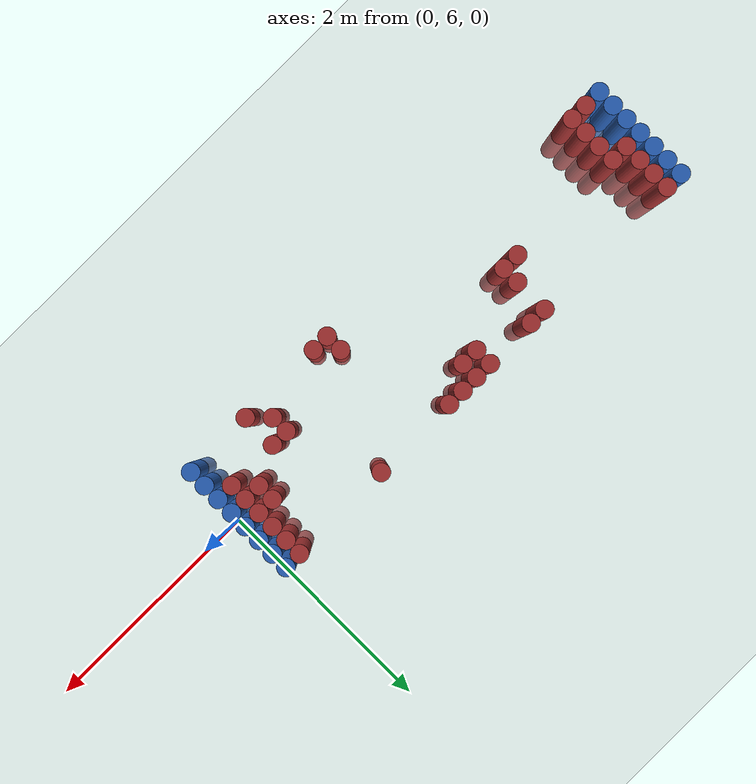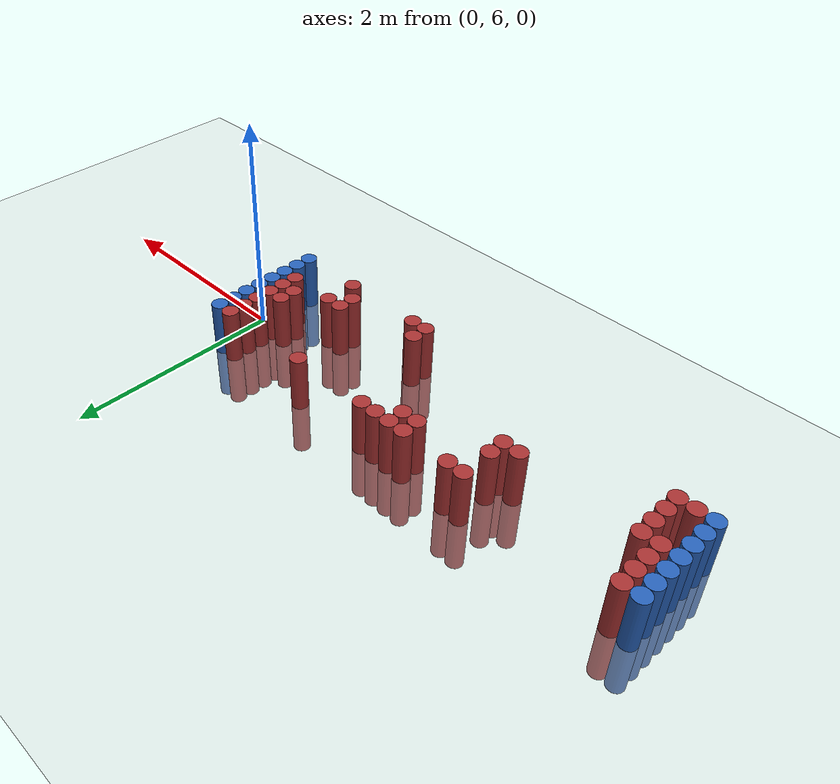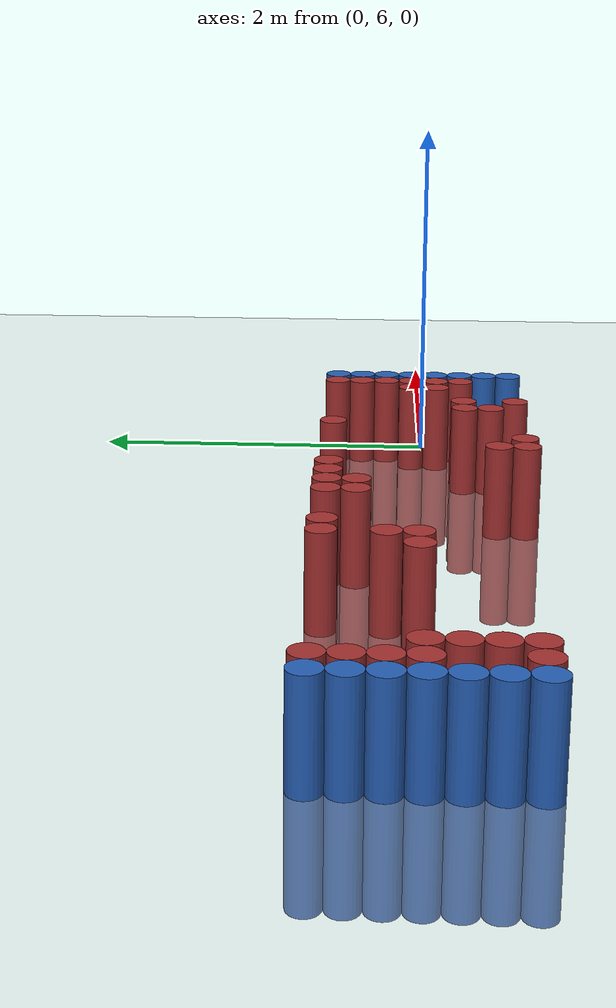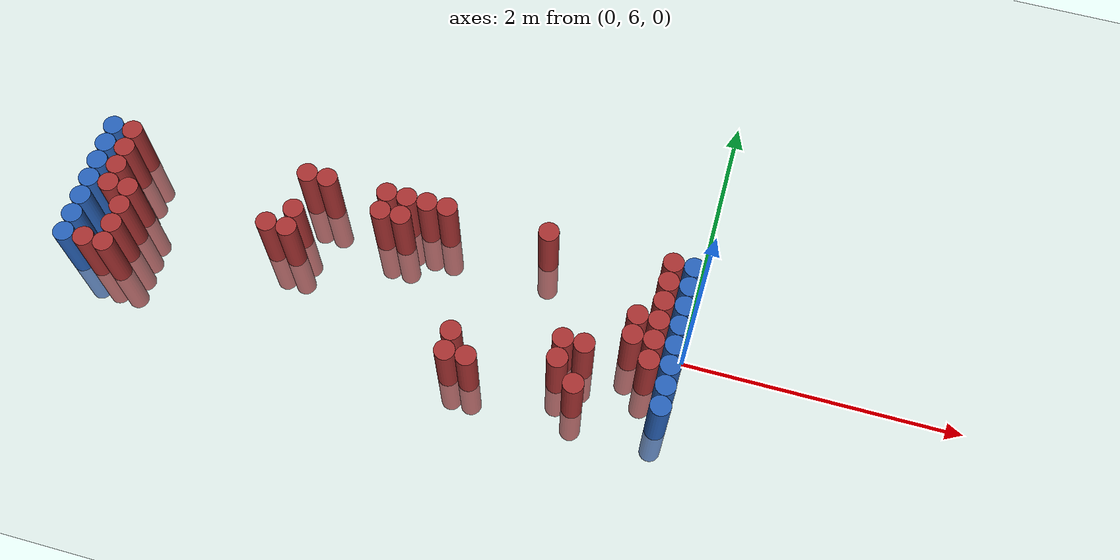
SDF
<sdf version="1.6">
 <world name="default">
  <model name="ground_plane">
   <static>1</static>
   <link name="link">
    <collision name="collision">
     <geometry><plane><normal>0 0 1</normal><size>100 100</size></plane></geometry>
     <surface><friction><ode><mu>100</mu><mu2>50</mu2></ode></friction></surface>
    </collision>
    <visual name="visual">
     <cast_shadows>0</cast_shadows>
     <geometry><plane><normal>0 0 1</normal><size>100 100</size></plane></geometry>
     <material>
      <script><uri>file://media/materials/scripts/gazebo.material</uri><name>Gazebo/Grey</name></script>
     </material>
    </visual>
   </link>
  </model>
  <model name="unit_cylinder_99">
   <static>1</static>
   <pose>-4.425000 5.625000 0.000000 0.000000 0.000000 0.000000</pose>
   <link name="link">
    <inertial>
     <mass>1</mass>
     <inertia><ixx>0.145833</ixx><ixy>0</ixy><ixz>0</ixz><iyy>0.145833</iyy><iyz>0</iyz><izz>0.125</izz></inertia>
    </inertial>
    <collision name="collision">
     <geometry><cylinder><radius>0.075000</radius><length>1</length></cylinder></geometry>
    </collision>
    <visual name="visual">
     <geometry><cylinder><radius>0.075000</radius><length>1</length></cylinder></geometry>
     <material>
      <ambient>0.152000 0.379000 0.720000 1</ambient>
      <diffuse>0.152000 0.379000 0.720000 1</diffuse>
     </material>
     <material>
      <script><name>Gazebo/Grey</name><uri>file://media/materials/scripts/gazebo.material</uri></script>
     </material>
    </visual>
   </link>
  </model>
  <model name="unit_cylinder_100">
   <static>1</static>
   <pose>-4.425000 5.775000 0.000000 0.000000 0.000000 0.000000</pose>
   <link name="link">
    <inertial>
     <mass>1</mass>
     <inertia><ixx>0.145833</ixx><ixy>0</ixy><ixz>0</ixz><iyy>0.145833</iyy><iyz>0</iyz><izz>0.125</izz></inertia>
    </inertial>
    <collision name="collision">
     <geometry><cylinder><radius>0.075000</radius><length>1</length></cylinder></geometry>
    </collision>
    <visual name="visual">
     <geometry><cylinder><radius>0.075000</radius><length>1</length></cylinder></geometry>
     <material>
      <ambient>0.152000 0.379000 0.720000 1</ambient>
      <diffuse>0.152000 0.379000 0.720000 1</diffuse>
     </material>
     <material>
      <script><name>Gazebo/Grey</name><uri>file://media/materials/scripts/gazebo.material</uri></script>
     </material>
    </visual>
   </link>
  </model>
  <model name="unit_cylinder_101">
   <static>1</static>
   <pose>-4.425000 5.925000 0.000000 0.000000 0.000000 0.000000</pose>
   <link name="link">
    <inertial>
     <mass>1</mass>
     <inertia><ixx>0.145833</ixx><ixy>0</ixy><ixz>0</ixz><iyy>0.145833</iyy><iyz>0</iyz><izz>0.125</izz></inertia>
    </inertial>
    <collision name="collision">
     <geometry><cylinder><radius>0.075000</radius><length>1</length></cylinder></geometry>
    </collision>
    <visual name="visual">
     <geometry><cylinder><radius>0.075000</radius><length>1</length></cylinder></geometry>
     <material>
      <ambient>0.152000 0.379000 0.720000 1</ambient>
      <diffuse>0.152000 0.379000 0.720000 1</diffuse>
     </material>
     <material>
      <script><name>Gazebo/Grey</name><uri>file://media/materials/scripts/gazebo.material</uri></script>
     </material>
    </visual>
   </link>
  </model>
  <model name="unit_cylinder_102">
   <static>1</static>
   <pose>-4.425000 6.075000 0.000000 0.000000 0.000000 0.000000</pose>
   <link name="link">
    <inertial>
     <mass>1</mass>
     <inertia><ixx>0.145833</ixx><ixy>0</ixy><ixz>0</ixz><iyy>0.145833</iyy><iyz>0</iyz><izz>0.125</izz></inertia>
    </inertial>
    <collision name="collision">
     <geometry><cylinder><radius>0.075000</radius><length>1</length></cylinder></geometry>
    </collision>
    <visual name="visual">
     <geometry><cylinder><radius>0.075000</radius><length>1</length></cylinder></geometry>
     <material>
      <ambient>0.152000 0.379000 0.720000 1</ambient>
      <diffuse>0.152000 0.379000 0.720000 1</diffuse>
     </material>
     <material>
      <script><name>Gazebo/Grey</name><uri>file://media/materials/scripts/gazebo.material</uri></script>
     </material>
    </visual>
   </link>
  </model>
  <model name="unit_cylinder_103">
   <static>1</static>
   <pose>-4.425000 6.225000 0.000000 0.000000 0.000000 0.000000</pose>
   <link name="link">
    <inertial>
     <mass>1</mass>
     <inertia><ixx>0.145833</ixx><ixy>0</ixy><ixz>0</ixz><iyy>0.145833</iyy><iyz>0</iyz><izz>0.125</izz></inertia>
    </inertial>
    <collision name="collision">
     <geometry><cylinder><radius>0.075000</radius><length>1</length></cylinder></geometry>
    </collision>
    <visual name="visual">
     <geometry><cylinder><radius>0.075000</radius><length>1</length></cylinder></geometry>
     <material>
      <ambient>0.152000 0.379000 0.720000 1</ambient>
      <diffuse>0.152000 0.379000 0.720000 1</diffuse>
     </material>
     <material>
      <script><name>Gazebo/Grey</name><uri>file://media/materials/scripts/gazebo.material</uri></script>
     </material>
    </visual>
   </link>
  </model>
  <model name="unit_cylinder_104">
   <static>1</static>
   <pose>-4.425000 6.375000 0.000000 0.000000 0.000000 0.000000</pose>
   <link name="link">
    <inertial>
     <mass>1</mass>
     <inertia><ixx>0.145833</ixx><ixy>0</ixy><ixz>0</ixz><iyy>0.145833</iyy><iyz>0</iyz><izz>0.125</izz></inertia>
    </inertial>
    <collision name="collision">
     <geometry><cylinder><radius>0.075000</radius><length>1</length></cylinder></geometry>
    </collision>
    <visual name="visual">
     <geometry><cylinder><radius>0.075000</radius><length>1</length></cylinder></geometry>
     <material>
      <ambient>0.152000 0.379000 0.720000 1</ambient>
      <diffuse>0.152000 0.379000 0.720000 1</diffuse>
     </material>
     <material>
      <script><name>Gazebo/Grey</name><uri>file://media/materials/scripts/gazebo.material</uri></script>
     </material>
    </visual>
   </link>
  </model>
  <model name="unit_cylinder_105">
   <static>1</static>
   <pose>-4.425000 6.525000 0.000000 0.000000 0.000000 0.000000</pose>
   <link name="link">
    <inertial>
     <mass>1</mass>
     <inertia><ixx>0.145833</ixx><ixy>0</ixy><ixz>0</ixz><iyy>0.145833</iyy><iyz>0</iyz><izz>0.125</izz></inertia>
    </inertial>
    <collision name="collision">
     <geometry><cylinder><radius>0.075000</radius><length>1</length></cylinder></geometry>
    </collision>
    <visual name="visual">
     <geometry><cylinder><radius>0.075000</radius><length>1</length></cylinder></geometry>
     <material>
      <ambient>0.152000 0.379000 0.720000 1</ambient>
      <diffuse>0.152000 0.379000 0.720000 1</diffuse>
     </material>
     <material>
      <script><name>Gazebo/Grey</name><uri>file://media/materials/scripts/gazebo.material</uri></script>
     </material>
    </visual>
   </link>
  </model>
  <model name="unit_cylinder_127">
   <static>1</static>
   <pose>-4.275000 5.625000 0.000000 0.000000 0.000000 0.000000</pose>
   <link name="link">
    <inertial>
     <mass>1</mass>
     <inertia><ixx>0.145833</ixx><ixy>0</ixy><ixz>0</ixz><iyy>0.145833</iyy><iyz>0</iyz><izz>0.125</izz></inertia>
    </inertial>
    <collision name="collision">
     <geometry><cylinder><radius>0.075000</radius><length>1</length></cylinder></geometry>
    </collision>
    <visual name="visual">
     <geometry><cylinder><radius>0.075000</radius><length>1</length></cylinder></geometry>
     <material>
      <ambient>0.648000 0.192000 0.192000 1</ambient>
      <diffuse>0.648000 0.192000 0.192000 1</diffuse>
     </material>
     <material>
      <script><name>Gazebo/Grey</name><uri>file://media/materials/scripts/gazebo.material</uri></script>
     </material>
    </visual>
   </link>
  </model>
  <model name="unit_cylinder_128">
   <static>1</static>
   <pose>-4.275000 6.075000 0.000000 0.000000 0.000000 0.000000</pose>
   <link name="link">
    <inertial>
     <mass>1</mass>
     <inertia><ixx>0.145833</ixx><ixy>0</ixy><ixz>0</ixz><iyy>0.145833</iyy><iyz>0</iyz><izz>0.125</izz></inertia>
    </inertial>
    <collision name="collision">
     <geometry><cylinder><radius>0.075000</radius><length>1</length></cylinder></geometry>
    </collision>
    <visual name="visual">
     <geometry><cylinder><radius>0.075000</radius><length>1</length></cylinder></geometry>
     <material>
      <ambient>0.648000 0.192000 0.192000 1</ambient>
      <diffuse>0.648000 0.192000 0.192000 1</diffuse>
     </material>
     <material>
      <script><name>Gazebo/Grey</name><uri>file://media/materials/scripts/gazebo.material</uri></script>
     </material>
    </visual>
   </link>
  </model>
  <model name="unit_cylinder_129">
   <static>1</static>
   <pose>-4.275000 6.225000 0.000000 0.000000 0.000000 0.000000</pose>
   <link name="link">
    <inertial>
     <mass>1</mass>
     <inertia><ixx>0.145833</ixx><ixy>0</ixy><ixz>0</ixz><iyy>0.145833</iyy><iyz>0</iyz><izz>0.125</izz></inertia>
    </inertial>
    <collision name="collision">
     <geometry><cylinder><radius>0.075000</radius><length>1</length></cylinder></geometry>
    </collision>
    <visual name="visual">
     <geometry><cylinder><radius>0.075000</radius><length>1</length></cylinder></geometry>
     <material>
      <ambient>0.648000 0.192000 0.192000 1</ambient>
      <diffuse>0.648000 0.192000 0.192000 1</diffuse>
     </material>
     <material>
      <script><name>Gazebo/Grey</name><uri>file://media/materials/scripts/gazebo.material</uri></script>
     </material>
    </visual>
   </link>
  </model>
  <model name="unit_cylinder_130">
   <static>1</static>
   <pose>-4.275000 6.375000 0.000000 0.000000 0.000000 0.000000</pose>
   <link name="link">
    <inertial>
     <mass>1</mass>
     <inertia><ixx>0.145833</ixx><ixy>0</ixy><ixz>0</ixz><iyy>0.145833</iyy><iyz>0</iyz><izz>0.125</izz></inertia>
    </inertial>
    <collision name="collision">
     <geometry><cylinder><radius>0.075000</radius><length>1</length></cylinder></geometry>
    </collision>
    <visual name="visual">
     <geometry><cylinder><radius>0.075000</radius><length>1</length></cylinder></geometry>
     <material>
      <ambient>0.648000 0.192000 0.192000 1</ambient>
      <diffuse>0.648000 0.192000 0.192000 1</diffuse>
     </material>
     <material>
      <script><name>Gazebo/Grey</name><uri>file://media/materials/scripts/gazebo.material</uri></script>
     </material>
    </visual>
   </link>
  </model>
  <model name="unit_cylinder_131">
   <static>1</static>
   <pose>-4.275000 6.525000 0.000000 0.000000 0.000000 0.000000</pose>
   <link name="link">
    <inertial>
     <mass>1</mass>
     <inertia><ixx>0.145833</ixx><ixy>0</ixy><ixz>0</ixz><iyy>0.145833</iyy><iyz>0</iyz><izz>0.125</izz></inertia>
    </inertial>
    <collision name="collision">
     <geometry><cylinder><radius>0.075000</radius><length>1</length></cylinder></geometry>
    </collision>
    <visual name="visual">
     <geometry><cylinder><radius>0.075000</radius><length>1</length></cylinder></geometry>
     <material>
      <ambient>0.648000 0.192000 0.192000 1</ambient>
      <diffuse>0.648000 0.192000 0.192000 1</diffuse>
     </material>
     <material>
      <script><name>Gazebo/Grey</name><uri>file://media/materials/scripts/gazebo.material</uri></script>
     </material>
    </visual>
   </link>
  </model>
  <model name="unit_cylinder_143">
   <static>1</static>
   <pose>-4.125000 5.625000 0.000000 0.000000 0.000000 0.000000</pose>
   <link name="link">
    <inertial>
     <mass>1</mass>
     <inertia><ixx>0.145833</ixx><ixy>0</ixy><ixz>0</ixz><iyy>0.145833</iyy><iyz>0</iyz><izz>0.125</izz></inertia>
    </inertial>
    <collision name="collision">
     <geometry><cylinder><radius>0.075000</radius><length>1</length></cylinder></geometry>
    </collision>
    <visual name="visual">
     <geometry><cylinder><radius>0.075000</radius><length>1</length></cylinder></geometry>
     <material>
      <ambient>0.648000 0.192000 0.192000 1</ambient>
      <diffuse>0.648000 0.192000 0.192000 1</diffuse>
     </material>
     <material>
      <script><name>Gazebo/Grey</name><uri>file://media/materials/scripts/gazebo.material</uri></script>
     </material>
    </visual>
   </link>
  </model>
  <model name="unit_cylinder_144">
   <static>1</static>
   <pose>-4.125000 5.775000 0.000000 0.000000 0.000000 0.000000</pose>
   <link name="link">
    <inertial>
     <mass>1</mass>
     <inertia><ixx>0.145833</ixx><ixy>0</ixy><ixz>0</ixz><iyy>0.145833</iyy><iyz>0</iyz><izz>0.125</izz></inertia>
    </inertial>
    <collision name="collision">
     <geometry><cylinder><radius>0.075000</radius><length>1</length></cylinder></geometry>
    </collision>
    <visual name="visual">
     <geometry><cylinder><radius>0.075000</radius><length>1</length></cylinder></geometry>
     <material>
      <ambient>0.648000 0.192000 0.192000 1</ambient>
      <diffuse>0.648000 0.192000 0.192000 1</diffuse>
     </material>
     <material>
      <script><name>Gazebo/Grey</name><uri>file://media/materials/scripts/gazebo.material</uri></script>
     </material>
    </visual>
   </link>
  </model>
  <model name="unit_cylinder_145">
   <static>1</static>
   <pose>-4.125000 5.925000 0.000000 0.000000 0.000000 0.000000</pose>
   <link name="link">
    <inertial>
     <mass>1</mass>
     <inertia><ixx>0.145833</ixx><ixy>0</ixy><ixz>0</ixz><iyy>0.145833</iyy><iyz>0</iyz><izz>0.125</izz></inertia>
    </inertial>
    <collision name="collision">
     <geometry><cylinder><radius>0.075000</radius><length>1</length></cylinder></geometry>
    </collision>
    <visual name="visual">
     <geometry><cylinder><radius>0.075000</radius><length>1</length></cylinder></geometry>
     <material>
      <ambient>0.648000 0.192000 0.192000 1</ambient>
      <diffuse>0.648000 0.192000 0.192000 1</diffuse>
     </material>
     <material>
      <script><name>Gazebo/Grey</name><uri>file://media/materials/scripts/gazebo.material</uri></script>
     </material>
    </visual>
   </link>
  </model>
  <model name="unit_cylinder_146">
   <static>1</static>
   <pose>-4.125000 6.075000 0.000000 0.000000 0.000000 0.000000</pose>
   <link name="link">
    <inertial>
     <mass>1</mass>
     <inertia><ixx>0.145833</ixx><ixy>0</ixy><ixz>0</ixz><iyy>0.145833</iyy><iyz>0</iyz><izz>0.125</izz></inertia>
    </inertial>
    <collision name="collision">
     <geometry><cylinder><radius>0.075000</radius><length>1</length></cylinder></geometry>
    </collision>
    <visual name="visual">
     <geometry><cylinder><radius>0.075000</radius><length>1</length></cylinder></geometry>
     <material>
      <ambient>0.648000 0.192000 0.192000 1</ambient>
      <diffuse>0.648000 0.192000 0.192000 1</diffuse>
     </material>
     <material>
      <script><name>Gazebo/Grey</name><uri>file://media/materials/scripts/gazebo.material</uri></script>
     </material>
    </visual>
   </link>
  </model>
  <model name="unit_cylinder_157">
   <static>1</static>
   <pose>-3.075000 6.075000 0.000000 0.000000 0.000000 0.000000</pose>
   <link name="link">
    <inertial>
     <mass>1</mass>
     <inertia><ixx>0.145833</ixx><ixy>0</ixy><ixz>0</ixz><iyy>0.145833</iyy><iyz>0</iyz><izz>0.125</izz></inertia>
    </inertial>
    <collision name="collision">
     <geometry><cylinder><radius>0.075000</radius><length>1</length></cylinder></geometry>
    </collision>
    <visual name="visual">
     <geometry><cylinder><radius>0.075000</radius><length>1</length></cylinder></geometry>
     <material>
      <ambient>0.648000 0.192000 0.192000 1</ambient>
      <diffuse>0.648000 0.192000 0.192000 1</diffuse>
     </material>
     <material>
      <script><name>Gazebo/Grey</name><uri>file://media/materials/scripts/gazebo.material</uri></script>
     </material>
    </visual>
   </link>
  </model>
  <model name="unit_cylinder_163">
   <static>1</static>
   <pose>-2.925000 6.075000 0.000000 0.000000 0.000000 0.000000</pose>
   <link name="link">
    <inertial>
     <mass>1</mass>
     <inertia><ixx>0.145833</ixx><ixy>0</ixy><ixz>0</ixz><iyy>0.145833</iyy><iyz>0</iyz><izz>0.125</izz></inertia>
    </inertial>
    <collision name="collision">
     <geometry><cylinder><radius>0.075000</radius><length>1</length></cylinder></geometry>
    </collision>
    <visual name="visual">
     <geometry><cylinder><radius>0.075000</radius><length>1</length></cylinder></geometry>
     <material>
      <ambient>0.648000 0.192000 0.192000 1</ambient>
      <diffuse>0.648000 0.192000 0.192000 1</diffuse>
     </material>
     <material>
      <script><name>Gazebo/Grey</name><uri>file://media/materials/scripts/gazebo.material</uri></script>
     </material>
    </visual>
   </link>
  </model>
  <model name="unit_cylinder_164">
   <static>1</static>
   <pose>-2.925000 6.225000 0.000000 0.000000 0.000000 0.000000</pose>
   <link name="link">
    <inertial>
     <mass>1</mass>
     <inertia><ixx>0.145833</ixx><ixy>0</ixy><ixz>0</ixz><iyy>0.145833</iyy><iyz>0</iyz><izz>0.125</izz></inertia>
    </inertial>
    <collision name="collision">
     <geometry><cylinder><radius>0.075000</radius><length>1</length></cylinder></geometry>
    </collision>
    <visual name="visual">
     <geometry><cylinder><radius>0.075000</radius><length>1</length></cylinder></geometry>
     <material>
      <ambient>0.648000 0.192000 0.192000 1</ambient>
      <diffuse>0.648000 0.192000 0.192000 1</diffuse>
     </material>
     <material>
      <script><name>Gazebo/Grey</name><uri>file://media/materials/scripts/gazebo.material</uri></script>
     </material>
    </visual>
   </link>
  </model>
  <model name="unit_cylinder_165">
   <static>1</static>
   <pose>-2.925000 6.525000 0.000000 0.000000 0.000000 0.000000</pose>
   <link name="link">
    <inertial>
     <mass>1</mass>
     <inertia><ixx>0.145833</ixx><ixy>0</ixy><ixz>0</ixz><iyy>0.145833</iyy><iyz>0</iyz><izz>0.125</izz></inertia>
    </inertial>
    <collision name="collision">
     <geometry><cylinder><radius>0.075000</radius><length>1</length></cylinder></geometry>
    </collision>
    <visual name="visual">
     <geometry><cylinder><radius>0.075000</radius><length>1</length></cylinder></geometry>
     <material>
      <ambient>0.648000 0.192000 0.192000 1</ambient>
      <diffuse>0.648000 0.192000 0.192000 1</diffuse>
     </material>
     <material>
      <script><name>Gazebo/Grey</name><uri>file://media/materials/scripts/gazebo.material</uri></script>
     </material>
    </visual>
   </link>
  </model>
  <model name="unit_cylinder_171">
   <static>1</static>
   <pose>-2.775000 6.525000 0.000000 0.000000 0.000000 0.000000</pose>
   <link name="link">
    <inertial>
     <mass>1</mass>
     <inertia><ixx>0.145833</ixx><ixy>0</ixy><ixz>0</ixz><iyy>0.145833</iyy><iyz>0</iyz><izz>0.125</izz></inertia>
    </inertial>
    <collision name="collision">
     <geometry><cylinder><radius>0.075000</radius><length>1</length></cylinder></geometry>
    </collision>
    <visual name="visual">
     <geometry><cylinder><radius>0.075000</radius><length>1</length></cylinder></geometry>
     <material>
      <ambient>0.648000 0.192000 0.192000 1</ambient>
      <diffuse>0.648000 0.192000 0.192000 1</diffuse>
     </material>
     <material>
      <script><name>Gazebo/Grey</name><uri>file://media/materials/scripts/gazebo.material</uri></script>
     </material>
    </visual>
   </link>
  </model>
  <model name="unit_cylinder_183">
   <static>1</static>
   <pose>-2.325000 6.375000 0.000000 0.000000 0.000000 0.000000</pose>
   <link name="link">
    <inertial>
     <mass>1</mass>
     <inertia><ixx>0.145833</ixx><ixy>0</ixy><ixz>0</ixz><iyy>0.145833</iyy><iyz>0</iyz><izz>0.125</izz></inertia>
    </inertial>
    <collision name="collision">
     <geometry><cylinder><radius>0.075000</radius><length>1</length></cylinder></geometry>
    </collision>
    <visual name="visual">
     <geometry><cylinder><radius>0.075000</radius><length>1</length></cylinder></geometry>
     <material>
      <ambient>0.648000 0.192000 0.192000 1</ambient>
      <diffuse>0.648000 0.192000 0.192000 1</diffuse>
     </material>
     <material>
      <script><name>Gazebo/Grey</name><uri>file://media/materials/scripts/gazebo.material</uri></script>
     </material>
    </visual>
   </link>
  </model>
  <model name="unit_cylinder_184">
   <static>1</static>
   <pose>-2.325000 6.525000 0.000000 0.000000 0.000000 0.000000</pose>
   <link name="link">
    <inertial>
     <mass>1</mass>
     <inertia><ixx>0.145833</ixx><ixy>0</ixy><ixz>0</ixz><iyy>0.145833</iyy><iyz>0</iyz><izz>0.125</izz></inertia>
    </inertial>
    <collision name="collision">
     <geometry><cylinder><radius>0.075000</radius><length>1</length></cylinder></geometry>
    </collision>
    <visual name="visual">
     <geometry><cylinder><radius>0.075000</radius><length>1</length></cylinder></geometry>
     <material>
      <ambient>0.648000 0.192000 0.192000 1</ambient>
      <diffuse>0.648000 0.192000 0.192000 1</diffuse>
     </material>
     <material>
      <script><name>Gazebo/Grey</name><uri>file://media/materials/scripts/gazebo.material</uri></script>
     </material>
    </visual>
   </link>
  </model>
  <model name="unit_cylinder_192">
   <static>1</static>
   <pose>-2.175000 6.375000 0.000000 0.000000 0.000000 0.000000</pose>
   <link name="link">
    <inertial>
     <mass>1</mass>
     <inertia><ixx>0.145833</ixx><ixy>0</ixy><ixz>0</ixz><iyy>0.145833</iyy><iyz>0</iyz><izz>0.125</izz></inertia>
    </inertial>
    <collision name="collision">
     <geometry><cylinder><radius>0.075000</radius><length>1</length></cylinder></geometry>
    </collision>
    <visual name="visual">
     <geometry><cylinder><radius>0.075000</radius><length>1</length></cylinder></geometry>
     <material>
      <ambient>0.648000 0.192000 0.192000 1</ambient>
      <diffuse>0.648000 0.192000 0.192000 1</diffuse>
     </material>
     <material>
      <script><name>Gazebo/Grey</name><uri>file://media/materials/scripts/gazebo.material</uri></script>
     </material>
    </visual>
   </link>
  </model>
  <model name="unit_cylinder_193">
   <static>1</static>
   <pose>-2.175000 6.525000 0.000000 0.000000 0.000000 0.000000</pose>
   <link name="link">
    <inertial>
     <mass>1</mass>
     <inertia><ixx>0.145833</ixx><ixy>0</ixy><ixz>0</ixz><iyy>0.145833</iyy><iyz>0</iyz><izz>0.125</izz></inertia>
    </inertial>
    <collision name="collision">
     <geometry><cylinder><radius>0.075000</radius><length>1</length></cylinder></geometry>
    </collision>
    <visual name="visual">
     <geometry><cylinder><radius>0.075000</radius><length>1</length></cylinder></geometry>
     <material>
      <ambient>0.648000 0.192000 0.192000 1</ambient>
      <diffuse>0.648000 0.192000 0.192000 1</diffuse>
     </material>
     <material>
      <script><name>Gazebo/Grey</name><uri>file://media/materials/scripts/gazebo.material</uri></script>
     </material>
    </visual>
   </link>
  </model>
  <model name="unit_cylinder_203">
   <static>1</static>
   <pose>-2.025000 6.525000 0.000000 0.000000 0.000000 0.000000</pose>
   <link name="link">
    <inertial>
     <mass>1</mass>
     <inertia><ixx>0.145833</ixx><ixy>0</ixy><ixz>0</ixz><iyy>0.145833</iyy><iyz>0</iyz><izz>0.125</izz></inertia>
    </inertial>
    <collision name="collision">
     <geometry><cylinder><radius>0.075000</radius><length>1</length></cylinder></geometry>
    </collision>
    <visual name="visual">
     <geometry><cylinder><radius>0.075000</radius><length>1</length></cylinder></geometry>
     <material>
      <ambient>0.648000 0.192000 0.192000 1</ambient>
      <diffuse>0.648000 0.192000 0.192000 1</diffuse>
     </material>
     <material>
      <script><name>Gazebo/Grey</name><uri>file://media/materials/scripts/gazebo.material</uri></script>
     </material>
    </visual>
   </link>
  </model>
  <model name="unit_cylinder_216">
   <static>1</static>
   <pose>-1.875000 6.525000 0.000000 0.000000 0.000000 0.000000</pose>
   <link name="link">
    <inertial>
     <mass>1</mass>
     <inertia><ixx>0.145833</ixx><ixy>0</ixy><ixz>0</ixz><iyy>0.145833</iyy><iyz>0</iyz><izz>0.125</izz></inertia>
    </inertial>
    <collision name="collision">
     <geometry><cylinder><radius>0.075000</radius><length>1</length></cylinder></geometry>
    </collision>
    <visual name="visual">
     <geometry><cylinder><radius>0.075000</radius><length>1</length></cylinder></geometry>
     <material>
      <ambient>0.648000 0.192000 0.192000 1</ambient>
      <diffuse>0.648000 0.192000 0.192000 1</diffuse>
     </material>
     <material>
      <script><name>Gazebo/Grey</name><uri>file://media/materials/scripts/gazebo.material</uri></script>
     </material>
    </visual>
   </link>
  </model>
  <model name="unit_cylinder_221">
   <static>1</static>
   <pose>-1.575000 5.475000 0.000000 0.000000 0.000000 0.000000</pose>
   <link name="link">
    <inertial>
     <mass>1</mass>
     <inertia><ixx>0.145833</ixx><ixy>0</ixy><ixz>0</ixz><iyy>0.145833</iyy><iyz>0</iyz><izz>0.125</izz></inertia>
    </inertial>
    <collision name="collision">
     <geometry><cylinder><radius>0.075000</radius><length>1</length></cylinder></geometry>
    </collision>
    <visual name="visual">
     <geometry><cylinder><radius>0.075000</radius><length>1</length></cylinder></geometry>
     <material>
      <ambient>0.648000 0.192000 0.192000 1</ambient>
      <diffuse>0.648000 0.192000 0.192000 1</diffuse>
     </material>
     <material>
      <script><name>Gazebo/Grey</name><uri>file://media/materials/scripts/gazebo.material</uri></script>
     </material>
    </visual>
   </link>
  </model>
  <model name="unit_cylinder_222">
   <static>1</static>
   <pose>-1.575000 5.625000 0.000000 0.000000 0.000000 0.000000</pose>
   <link name="link">
    <inertial>
     <mass>1</mass>
     <inertia><ixx>0.145833</ixx><ixy>0</ixy><ixz>0</ixz><iyy>0.145833</iyy><iyz>0</iyz><izz>0.125</izz></inertia>
    </inertial>
    <collision name="collision">
     <geometry><cylinder><radius>0.075000</radius><length>1</length></cylinder></geometry>
    </collision>
    <visual name="visual">
     <geometry><cylinder><radius>0.075000</radius><length>1</length></cylinder></geometry>
     <material>
      <ambient>0.648000 0.192000 0.192000 1</ambient>
      <diffuse>0.648000 0.192000 0.192000 1</diffuse>
     </material>
     <material>
      <script><name>Gazebo/Grey</name><uri>file://media/materials/scripts/gazebo.material</uri></script>
     </material>
    </visual>
   </link>
  </model>
  <model name="unit_cylinder_224">
   <static>1</static>
   <pose>-1.425000 5.475000 0.000000 0.000000 0.000000 0.000000</pose>
   <link name="link">
    <inertial>
     <mass>1</mass>
     <inertia><ixx>0.145833</ixx><ixy>0</ixy><ixz>0</ixz><iyy>0.145833</iyy><iyz>0</iyz><izz>0.125</izz></inertia>
    </inertial>
    <collision name="collision">
     <geometry><cylinder><radius>0.075000</radius><length>1</length></cylinder></geometry>
    </collision>
    <visual name="visual">
     <geometry><cylinder><radius>0.075000</radius><length>1</length></cylinder></geometry>
     <material>
      <ambient>0.648000 0.192000 0.192000 1</ambient>
      <diffuse>0.648000 0.192000 0.192000 1</diffuse>
     </material>
     <material>
      <script><name>Gazebo/Grey</name><uri>file://media/materials/scripts/gazebo.material</uri></script>
     </material>
    </visual>
   </link>
  </model>
  <model name="unit_cylinder_232">
   <static>1</static>
   <pose>-1.125000 6.525000 0.000000 0.000000 0.000000 0.000000</pose>
   <link name="link">
    <inertial>
     <mass>1</mass>
     <inertia><ixx>0.145833</ixx><ixy>0</ixy><ixz>0</ixz><iyy>0.145833</iyy><iyz>0</iyz><izz>0.125</izz></inertia>
    </inertial>
    <collision name="collision">
     <geometry><cylinder><radius>0.075000</radius><length>1</length></cylinder></geometry>
    </collision>
    <visual name="visual">
     <geometry><cylinder><radius>0.075000</radius><length>1</length></cylinder></geometry>
     <material>
      <ambient>0.648000 0.192000 0.192000 1</ambient>
      <diffuse>0.648000 0.192000 0.192000 1</diffuse>
     </material>
     <material>
      <script><name>Gazebo/Grey</name><uri>file://media/materials/scripts/gazebo.material</uri></script>
     </material>
    </visual>
   </link>
  </model>
  <model name="unit_cylinder_238">
   <static>1</static>
   <pose>-0.825000 5.625000 0.000000 0.000000 0.000000 0.000000</pose>
   <link name="link">
    <inertial>
     <mass>1</mass>
     <inertia><ixx>0.145833</ixx><ixy>0</ixy><ixz>0</ixz><iyy>0.145833</iyy><iyz>0</iyz><izz>0.125</izz></inertia>
    </inertial>
    <collision name="collision">
     <geometry><cylinder><radius>0.075000</radius><length>1</length></cylinder></geometry>
    </collision>
    <visual name="visual">
     <geometry><cylinder><radius>0.075000</radius><length>1</length></cylinder></geometry>
     <material>
      <ambient>0.648000 0.192000 0.192000 1</ambient>
      <diffuse>0.648000 0.192000 0.192000 1</diffuse>
     </material>
     <material>
      <script><name>Gazebo/Grey</name><uri>file://media/materials/scripts/gazebo.material</uri></script>
     </material>
    </visual>
   </link>
  </model>
  <model name="unit_cylinder_239">
   <static>1</static>
   <pose>-0.825000 5.775000 0.000000 0.000000 0.000000 0.000000</pose>
   <link name="link">
    <inertial>
     <mass>1</mass>
     <inertia><ixx>0.145833</ixx><ixy>0</ixy><ixz>0</ixz><iyy>0.145833</iyy><iyz>0</iyz><izz>0.125</izz></inertia>
    </inertial>
    <collision name="collision">
     <geometry><cylinder><radius>0.075000</radius><length>1</length></cylinder></geometry>
    </collision>
    <visual name="visual">
     <geometry><cylinder><radius>0.075000</radius><length>1</length></cylinder></geometry>
     <material>
      <ambient>0.648000 0.192000 0.192000 1</ambient>
      <diffuse>0.648000 0.192000 0.192000 1</diffuse>
     </material>
     <material>
      <script><name>Gazebo/Grey</name><uri>file://media/materials/scripts/gazebo.material</uri></script>
     </material>
    </visual>
   </link>
  </model>
  <model name="unit_cylinder_243">
   <static>1</static>
   <pose>-0.675000 5.475000 0.000000 0.000000 0.000000 0.000000</pose>
   <link name="link">
    <inertial>
     <mass>1</mass>
     <inertia><ixx>0.145833</ixx><ixy>0</ixy><ixz>0</ixz><iyy>0.145833</iyy><iyz>0</iyz><izz>0.125</izz></inertia>
    </inertial>
    <collision name="collision">
     <geometry><cylinder><radius>0.075000</radius><length>1</length></cylinder></geometry>
    </collision>
    <visual name="visual">
     <geometry><cylinder><radius>0.075000</radius><length>1</length></cylinder></geometry>
     <material>
      <ambient>0.648000 0.192000 0.192000 1</ambient>
      <diffuse>0.648000 0.192000 0.192000 1</diffuse>
     </material>
     <material>
      <script><name>Gazebo/Grey</name><uri>file://media/materials/scripts/gazebo.material</uri></script>
     </material>
    </visual>
   </link>
  </model>
  <model name="unit_cylinder_244">
   <static>1</static>
   <pose>-0.675000 5.775000 0.000000 0.000000 0.000000 0.000000</pose>
   <link name="link">
    <inertial>
     <mass>1</mass>
     <inertia><ixx>0.145833</ixx><ixy>0</ixy><ixz>0</ixz><iyy>0.145833</iyy><iyz>0</iyz><izz>0.125</izz></inertia>
    </inertial>
    <collision name="collision">
     <geometry><cylinder><radius>0.075000</radius><length>1</length></cylinder></geometry>
    </collision>
    <visual name="visual">
     <geometry><cylinder><radius>0.075000</radius><length>1</length></cylinder></geometry>
     <material>
      <ambient>0.648000 0.192000 0.192000 1</ambient>
      <diffuse>0.648000 0.192000 0.192000 1</diffuse>
     </material>
     <material>
      <script><name>Gazebo/Grey</name><uri>file://media/materials/scripts/gazebo.material</uri></script>
     </material>
    </visual>
   </link>
  </model>
  <model name="unit_cylinder_254">
   <static>1</static>
   <pose>-0.375000 5.925000 0.000000 0.000000 0.000000 0.000000</pose>
   <link name="link">
    <inertial>
     <mass>1</mass>
     <inertia><ixx>0.145833</ixx><ixy>0</ixy><ixz>0</ixz><iyy>0.145833</iyy><iyz>0</iyz><izz>0.125</izz></inertia>
    </inertial>
    <collision name="collision">
     <geometry><cylinder><radius>0.075000</radius><length>1</length></cylinder></geometry>
    </collision>
    <visual name="visual">
     <geometry><cylinder><radius>0.075000</radius><length>1</length></cylinder></geometry>
     <material>
      <ambient>0.648000 0.192000 0.192000 1</ambient>
      <diffuse>0.648000 0.192000 0.192000 1</diffuse>
     </material>
     <material>
      <script><name>Gazebo/Grey</name><uri>file://media/materials/scripts/gazebo.material</uri></script>
     </material>
    </visual>
   </link>
  </model>
  <model name="unit_cylinder_255">
   <static>1</static>
   <pose>-0.375000 6.075000 0.000000 0.000000 0.000000 0.000000</pose>
   <link name="link">
    <inertial>
     <mass>1</mass>
     <inertia><ixx>0.145833</ixx><ixy>0</ixy><ixz>0</ixz><iyy>0.145833</iyy><iyz>0</iyz><izz>0.125</izz></inertia>
    </inertial>
    <collision name="collision">
     <geometry><cylinder><radius>0.075000</radius><length>1</length></cylinder></geometry>
    </collision>
    <visual name="visual">
     <geometry><cylinder><radius>0.075000</radius><length>1</length></cylinder></geometry>
     <material>
      <ambient>0.648000 0.192000 0.192000 1</ambient>
      <diffuse>0.648000 0.192000 0.192000 1</diffuse>
     </material>
     <material>
      <script><name>Gazebo/Grey</name><uri>file://media/materials/scripts/gazebo.material</uri></script>
     </material>
    </visual>
   </link>
  </model>
  <model name="unit_cylinder_259">
   <static>1</static>
   <pose>-0.225000 5.775000 0.000000 0.000000 0.000000 0.000000</pose>
   <link name="link">
    <inertial>
     <mass>1</mass>
     <inertia><ixx>0.145833</ixx><ixy>0</ixy><ixz>0</ixz><iyy>0.145833</iyy><iyz>0</iyz><izz>0.125</izz></inertia>
    </inertial>
    <collision name="collision">
     <geometry><cylinder><radius>0.075000</radius><length>1</length></cylinder></geometry>
    </collision>
    <visual name="visual">
     <geometry><cylinder><radius>0.075000</radius><length>1</length></cylinder></geometry>
     <material>
      <ambient>0.648000 0.192000 0.192000 1</ambient>
      <diffuse>0.648000 0.192000 0.192000 1</diffuse>
     </material>
     <material>
      <script><name>Gazebo/Grey</name><uri>file://media/materials/scripts/gazebo.material</uri></script>
     </material>
    </visual>
   </link>
  </model>
  <model name="unit_cylinder_260">
   <static>1</static>
   <pose>-0.225000 5.925000 0.000000 0.000000 0.000000 0.000000</pose>
   <link name="link">
    <inertial>
     <mass>1</mass>
     <inertia><ixx>0.145833</ixx><ixy>0</ixy><ixz>0</ixz><iyy>0.145833</iyy><iyz>0</iyz><izz>0.125</izz></inertia>
    </inertial>
    <collision name="collision">
     <geometry><cylinder><radius>0.075000</radius><length>1</length></cylinder></geometry>
    </collision>
    <visual name="visual">
     <geometry><cylinder><radius>0.075000</radius><length>1</length></cylinder></geometry>
     <material>
      <ambient>0.648000 0.192000 0.192000 1</ambient>
      <diffuse>0.648000 0.192000 0.192000 1</diffuse>
     </material>
     <material>
      <script><name>Gazebo/Grey</name><uri>file://media/materials/scripts/gazebo.material</uri></script>
     </material>
    </visual>
   </link>
  </model>
  <model name="unit_cylinder_261">
   <static>1</static>
   <pose>-0.225000 6.075000 0.000000 0.000000 0.000000 0.000000</pose>
   <link name="link">
    <inertial>
     <mass>1</mass>
     <inertia><ixx>0.145833</ixx><ixy>0</ixy><ixz>0</ixz><iyy>0.145833</iyy><iyz>0</iyz><izz>0.125</izz></inertia>
    </inertial>
    <collision name="collision">
     <geometry><cylinder><radius>0.075000</radius><length>1</length></cylinder></geometry>
    </collision>
    <visual name="visual">
     <geometry><cylinder><radius>0.075000</radius><length>1</length></cylinder></geometry>
     <material>
      <ambient>0.648000 0.192000 0.192000 1</ambient>
      <diffuse>0.648000 0.192000 0.192000 1</diffuse>
     </material>
     <material>
      <script><name>Gazebo/Grey</name><uri>file://media/materials/scripts/gazebo.material</uri></script>
     </material>
    </visual>
   </link>
  </model>
  <model name="unit_cylinder_262">
   <static>1</static>
   <pose>-0.225000 6.225000 0.000000 0.000000 0.000000 0.000000</pose>
   <link name="link">
    <inertial>
     <mass>1</mass>
     <inertia><ixx>0.145833</ixx><ixy>0</ixy><ixz>0</ixz><iyy>0.145833</iyy><iyz>0</iyz><izz>0.125</izz></inertia>
    </inertial>
    <collision name="collision">
     <geometry><cylinder><radius>0.075000</radius><length>1</length></cylinder></geometry>
    </collision>
    <visual name="visual">
     <geometry><cylinder><radius>0.075000</radius><length>1</length></cylinder></geometry>
     <material>
      <ambient>0.648000 0.192000 0.192000 1</ambient>
      <diffuse>0.648000 0.192000 0.192000 1</diffuse>
     </material>
     <material>
      <script><name>Gazebo/Grey</name><uri>file://media/materials/scripts/gazebo.material</uri></script>
     </material>
    </visual>
   </link>
  </model>
  <model name="unit_cylinder_263">
   <static>1</static>
   <pose>-0.225000 6.375000 0.000000 0.000000 0.000000 0.000000</pose>
   <link name="link">
    <inertial>
     <mass>1</mass>
     <inertia><ixx>0.145833</ixx><ixy>0</ixy><ixz>0</ixz><iyy>0.145833</iyy><iyz>0</iyz><izz>0.125</izz></inertia>
    </inertial>
    <collision name="collision">
     <geometry><cylinder><radius>0.075000</radius><length>1</length></cylinder></geometry>
    </collision>
    <visual name="visual">
     <geometry><cylinder><radius>0.075000</radius><length>1</length></cylinder></geometry>
     <material>
      <ambient>0.648000 0.192000 0.192000 1</ambient>
      <diffuse>0.648000 0.192000 0.192000 1</diffuse>
     </material>
     <material>
      <script><name>Gazebo/Grey</name><uri>file://media/materials/scripts/gazebo.material</uri></script>
     </material>
    </visual>
   </link>
  </model>
  <model name="unit_cylinder_264">
   <static>1</static>
   <pose>-0.225000 6.525000 0.000000 0.000000 0.000000 0.000000</pose>
   <link name="link">
    <inertial>
     <mass>1</mass>
     <inertia><ixx>0.145833</ixx><ixy>0</ixy><ixz>0</ixz><iyy>0.145833</iyy><iyz>0</iyz><izz>0.125</izz></inertia>
    </inertial>
    <collision name="collision">
     <geometry><cylinder><radius>0.075000</radius><length>1</length></cylinder></geometry>
    </collision>
    <visual name="visual">
     <geometry><cylinder><radius>0.075000</radius><length>1</length></cylinder></geometry>
     <material>
      <ambient>0.648000 0.192000 0.192000 1</ambient>
      <diffuse>0.648000 0.192000 0.192000 1</diffuse>
     </material>
     <material>
      <script><name>Gazebo/Grey</name><uri>file://media/materials/scripts/gazebo.material</uri></script>
     </material>
    </visual>
   </link>
  </model>
  <model name="unit_cylinder_279">
   <static>1</static>
   <pose>-0.075000 5.475000 0.000000 0.000000 0.000000 0.000000</pose>
   <link name="link">
    <inertial>
     <mass>1</mass>
     <inertia><ixx>0.145833</ixx><ixy>0</ixy><ixz>0</ixz><iyy>0.145833</iyy><iyz>0</iyz><izz>0.125</izz></inertia>
    </inertial>
    <collision name="collision">
     <geometry><cylinder><radius>0.075000</radius><length>1</length></cylinder></geometry>
    </collision>
    <visual name="visual">
     <geometry><cylinder><radius>0.075000</radius><length>1</length></cylinder></geometry>
     <material>
      <ambient>0.152000 0.379000 0.720000 1</ambient>
      <diffuse>0.152000 0.379000 0.720000 1</diffuse>
     </material>
     <material>
      <script><name>Gazebo/Grey</name><uri>file://media/materials/scripts/gazebo.material</uri></script>
     </material>
    </visual>
   </link>
  </model>
  <model name="unit_cylinder_280">
   <static>1</static>
   <pose>-0.075000 5.625000 0.000000 0.000000 0.000000 0.000000</pose>
   <link name="link">
    <inertial>
     <mass>1</mass>
     <inertia><ixx>0.145833</ixx><ixy>0</ixy><ixz>0</ixz><iyy>0.145833</iyy><iyz>0</iyz><izz>0.125</izz></inertia>
    </inertial>
    <collision name="collision">
     <geometry><cylinder><radius>0.075000</radius><length>1</length></cylinder></geometry>
    </collision>
    <visual name="visual">
     <geometry><cylinder><radius>0.075000</radius><length>1</length></cylinder></geometry>
     <material>
      <ambient>0.152000 0.379000 0.720000 1</ambient>
      <diffuse>0.152000 0.379000 0.720000 1</diffuse>
     </material>
     <material>
      <script><name>Gazebo/Grey</name><uri>file://media/materials/scripts/gazebo.material</uri></script>
     </material>
    </visual>
   </link>
  </model>
  <model name="unit_cylinder_281">
   <static>1</static>
   <pose>-0.075000 5.775000 0.000000 0.000000 0.000000 0.000000</pose>
   <link name="link">
    <inertial>
     <mass>1</mass>
     <inertia><ixx>0.145833</ixx><ixy>0</ixy><ixz>0</ixz><iyy>0.145833</iyy><iyz>0</iyz><izz>0.125</izz></inertia>
    </inertial>
    <collision name="collision">
     <geometry><cylinder><radius>0.075000</radius><length>1</length></cylinder></geometry>
    </collision>
    <visual name="visual">
     <geometry><cylinder><radius>0.075000</radius><length>1</length></cylinder></geometry>
     <material>
      <ambient>0.152000 0.379000 0.720000 1</ambient>
      <diffuse>0.152000 0.379000 0.720000 1</diffuse>
     </material>
     <material>
      <script><name>Gazebo/Grey</name><uri>file://media/materials/scripts/gazebo.material</uri></script>
     </material>
    </visual>
   </link>
  </model>
  <model name="unit_cylinder_282">
   <static>1</static>
   <pose>-0.075000 5.925000 0.000000 0.000000 0.000000 0.000000</pose>
   <link name="link">
    <inertial>
     <mass>1</mass>
     <inertia><ixx>0.145833</ixx><ixy>0</ixy><ixz>0</ixz><iyy>0.145833</iyy><iyz>0</iyz><izz>0.125</izz></inertia>
    </inertial>
    <collision name="collision">
     <geometry><cylinder><radius>0.075000</radius><length>1</length></cylinder></geometry>
    </collision>
    <visual name="visual">
     <geometry><cylinder><radius>0.075000</radius><length>1</length></cylinder></geometry>
     <material>
      <ambient>0.152000 0.379000 0.720000 1</ambient>
      <diffuse>0.152000 0.379000 0.720000 1</diffuse>
     </material>
     <material>
      <script><name>Gazebo/Grey</name><uri>file://media/materials/scripts/gazebo.material</uri></script>
     </material>
    </visual>
   </link>
  </model>
  <model name="unit_cylinder_283">
   <static>1</static>
   <pose>-0.075000 6.075000 0.000000 0.000000 0.000000 0.000000</pose>
   <link name="link">
    <inertial>
     <mass>1</mass>
     <inertia><ixx>0.145833</ixx><ixy>0</ixy><ixz>0</ixz><iyy>0.145833</iyy><iyz>0</iyz><izz>0.125</izz></inertia>
    </inertial>
    <collision name="collision">
     <geometry><cylinder><radius>0.075000</radius><length>1</length></cylinder></geometry>
    </collision>
    <visual name="visual">
     <geometry><cylinder><radius>0.075000</radius><length>1</length></cylinder></geometry>
     <material>
      <ambient>0.152000 0.379000 0.720000 1</ambient>
      <diffuse>0.152000 0.379000 0.720000 1</diffuse>
     </material>
     <material>
      <script><name>Gazebo/Grey</name><uri>file://media/materials/scripts/gazebo.material</uri></script>
     </material>
    </visual>
   </link>
  </model>
  <model name="unit_cylinder_284">
   <static>1</static>
   <pose>-0.075000 6.225000 0.000000 0.000000 0.000000 0.000000</pose>
   <link name="link">
    <inertial>
     <mass>1</mass>
     <inertia><ixx>0.145833</ixx><ixy>0</ixy><ixz>0</ixz><iyy>0.145833</iyy><iyz>0</iyz><izz>0.125</izz></inertia>
    </inertial>
    <collision name="collision">
     <geometry><cylinder><radius>0.075000</radius><length>1</length></cylinder></geometry>
    </collision>
    <visual name="visual">
     <geometry><cylinder><radius>0.075000</radius><length>1</length></cylinder></geometry>
     <material>
      <ambient>0.152000 0.379000 0.720000 1</ambient>
      <diffuse>0.152000 0.379000 0.720000 1</diffuse>
     </material>
     <material>
      <script><name>Gazebo/Grey</name><uri>file://media/materials/scripts/gazebo.material</uri></script>
     </material>
    </visual>
   </link>
  </model>
  <model name="unit_cylinder_285">
   <static>1</static>
   <pose>-0.075000 6.375000 0.000000 0.000000 0.000000 0.000000</pose>
   <link name="link">
    <inertial>
     <mass>1</mass>
     <inertia><ixx>0.145833</ixx><ixy>0</ixy><ixz>0</ixz><iyy>0.145833</iyy><iyz>0</iyz><izz>0.125</izz></inertia>
    </inertial>
    <collision name="collision">
     <geometry><cylinder><radius>0.075000</radius><length>1</length></cylinder></geometry>
    </collision>
    <visual name="visual">
     <geometry><cylinder><radius>0.075000</radius><length>1</length></cylinder></geometry>
     <material>
      <ambient>0.152000 0.379000 0.720000 1</ambient>
      <diffuse>0.152000 0.379000 0.720000 1</diffuse>
     </material>
     <material>
      <script><name>Gazebo/Grey</name><uri>file://media/materials/scripts/gazebo.material</uri></script>
     </material>
    </visual>
   </link>
  </model>
  <model name="unit_cylinder_286">
   <static>1</static>
   <pose>-0.075000 6.525000 0.000000 0.000000 0.000000 0.000000</pose>
   <link name="link">
    <inertial>
     <mass>1</mass>
     <inertia><ixx>0.145833</ixx><ixy>0</ixy><ixz>0</ixz><iyy>0.145833</iyy><iyz>0</iyz><izz>0.125</izz></inertia>
    </inertial>
    <collision name="collision">
     <geometry><cylinder><radius>0.075000</radius><length>1</length></cylinder></geometry>
    </collision>
    <visual name="visual">
     <geometry><cylinder><radius>0.075000</radius><length>1</length></cylinder></geometry>
     <material>
      <ambient>0.152000 0.379000 0.720000 1</ambient>
      <diffuse>0.152000 0.379000 0.720000 1</diffuse>
     </material>
     <material>
      <script><name>Gazebo/Grey</name><uri>file://media/materials/scripts/gazebo.material</uri></script>
     </material>
    </visual>
   </link>
  </model>
 </world>
</sdf>
